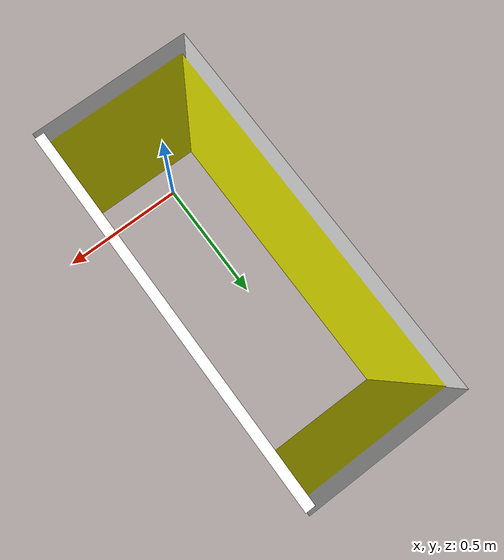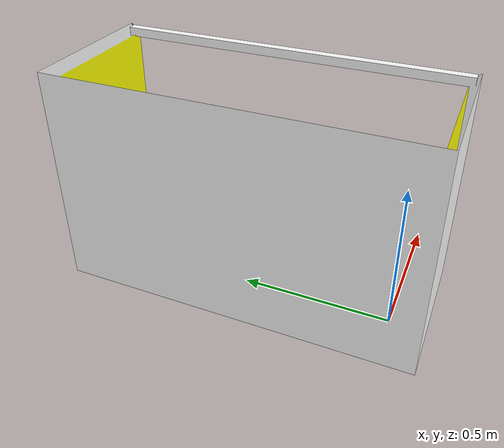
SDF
<?xml version="1.0" ?>
<sdf version="1.4">
  <model name="YellowGoal">
    <pose>0 0 0  0 0 0</pose>
    <static>true</static>
    <link name="link">
      <collision name="collision">
        <geometry>
          <mesh>
            <uri>model://yellow_goal/meshes/YellowGoal.DAE</uri>
          </mesh>
        </geometry>
      </collision>
      <visual name="visual">
        <geometry>
          <mesh>
            <uri>model://yellow_goal/meshes/YellowGoal.DAE</uri>
          </mesh>
        </geometry>
      </visual>
    </link>
  </model>
</sdf>
